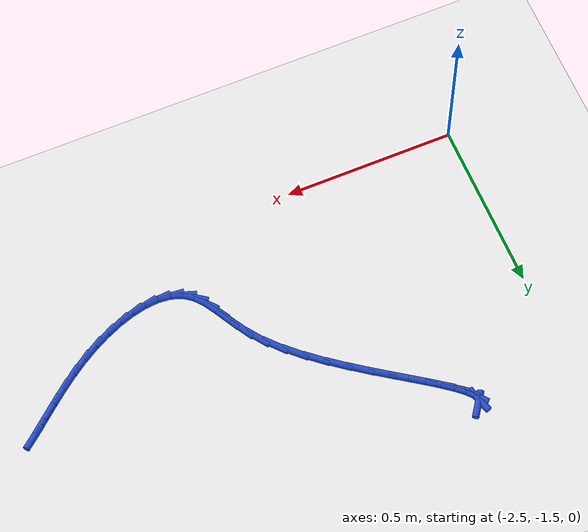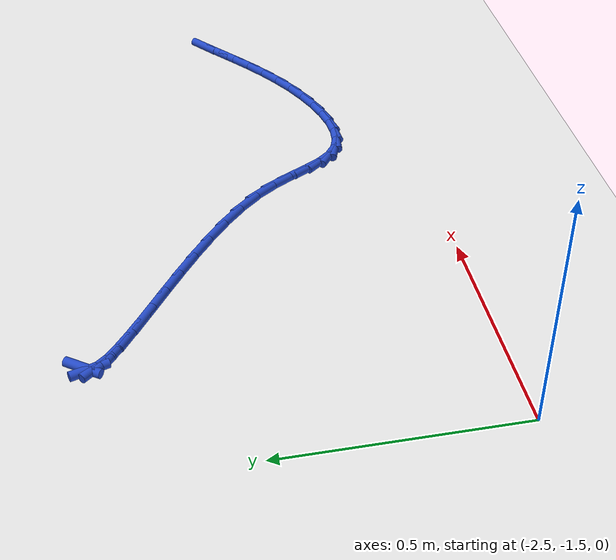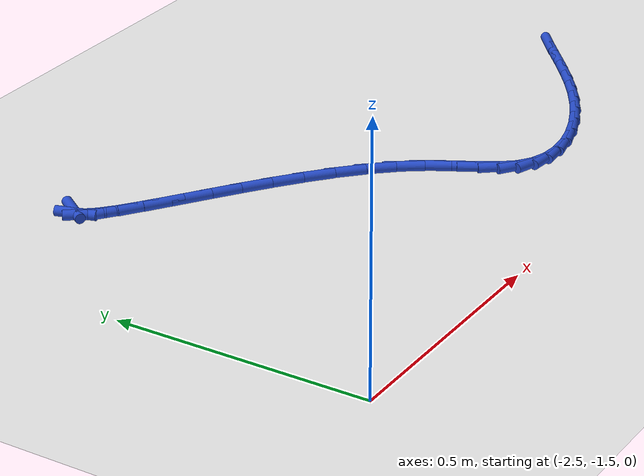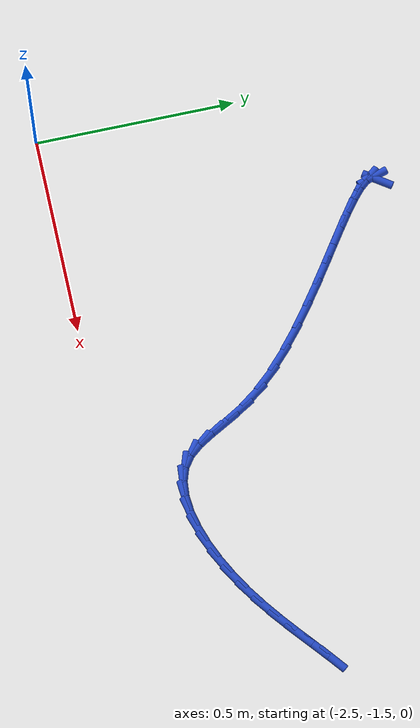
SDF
<sdf version="1.6">
 <world name="default">
  <model name="ground_plane">
   <static>1</static>
   <link name="link">
    <collision name="collision">
     <geometry><plane><normal>0 0 1</normal><size>100 100</size></plane></geometry>
     <surface><friction><ode><mu>100</mu><mu2>50</mu2></ode></friction></surface>
    </collision>
    <visual name="visual">
     <cast_shadows>0</cast_shadows>
     <geometry><plane><normal>0 0 1</normal><size>100 100</size></plane></geometry>
     <material>
      <script><uri>file://media/materials/scripts/gazebo.material</uri><name>Gazebo/WhiteGlow</name></script>
     </material>
    </visual>
   </link>
  </model>
  <model name="line">
   <link name="link_116">
    <pose>-2.22125294652081 -0.6990815131494412 0.01 0 1.57 0.9571895942370352</pose>
    <collision name="collision">
     <geometry><cylinder><radius>0.01</radius><length>0.08</length></cylinder></geometry>
    </collision>
    <visual name="visual">
     <material>
      <script><name>Gazebo/Blue</name><uri>file://media/materials/scripts/gazebo.material</uri></script>
     </material>
     <geometry><cylinder><radius>0.01</radius><length>0.08</length></cylinder></geometry>
    </visual>
   </link>
   <link name="link_117">
    <pose>-2.2292272170919185 -0.7104037606477653 0.01 0 1.57 -1.2773089776449813</pose>
    <collision name="collision">
     <geometry><cylinder><radius>0.01</radius><length>0.08</length></cylinder></geometry>
    </collision>
    <visual name="visual">
     <material>
      <script><name>Gazebo/Blue</name><uri>file://media/materials/scripts/gazebo.material</uri></script>
     </material>
     <geometry><cylinder><radius>0.01</radius><length>0.08</length></cylinder></geometry>
    </visual>
   </link>
   <link name="link_118">
    <pose>-2.224597545553726 -0.7257229102491581 0.01 0 1.57 -0.8812159878755749</pose>
    <collision name="collision">
     <geometry><cylinder><radius>0.01</radius><length>0.08</length></cylinder></geometry>
    </collision>
    <visual name="visual">
     <material>
      <script><name>Gazebo/Blue</name><uri>file://media/materials/scripts/gazebo.material</uri></script>
     </material>
     <geometry><cylinder><radius>0.01</radius><length>0.08</length></cylinder></geometry>
    </visual>
   </link>
   <link name="link_119">
    <pose>-2.2089000163566026 -0.7447587366378638 0.01 0 1.57 -0.7276650507474955</pose>
    <collision name="collision">
     <geometry><cylinder><radius>0.01</radius><length>0.08</length></cylinder></geometry>
    </collision>
    <visual name="visual">
     <material>
      <script><name>Gazebo/Blue</name><uri>file://media/materials/scripts/gazebo.material</uri></script>
     </material>
     <geometry><cylinder><radius>0.01</radius><length>0.08</length></cylinder></geometry>
    </visual>
   </link>
   <link name="link_120">
    <pose>-2.183670713950921 -0.7672310144981273 0.01 0 1.57 -0.6570333576329697</pose>
    <collision name="collision">
     <geometry><cylinder><radius>0.01</radius><length>0.08</length></cylinder></geometry>
    </collision>
    <visual name="visual">
     <material>
      <script><name>Gazebo/Blue</name><uri>file://media/materials/scripts/gazebo.material</uri></script>
     </material>
     <geometry><cylinder><radius>0.01</radius><length>0.08</length></cylinder></geometry>
    </visual>
   </link>
   <link name="link_121">
    <pose>-2.1504457227870497 -0.7928595185141918 0.01 0 1.57 -0.6228869242724772</pose>
    <collision name="collision">
     <geometry><cylinder><radius>0.01</radius><length>0.08</length></cylinder></geometry>
    </collision>
    <visual name="visual">
     <material>
      <script><name>Gazebo/Blue</name><uri>file://media/materials/scripts/gazebo.material</uri></script>
     </material>
     <geometry><cylinder><radius>0.01</radius><length>0.08</length></cylinder></geometry>
    </visual>
   </link>
   <link name="link_122">
    <pose>-2.1107611273153606 -0.821364023370302 0.01 0 1.57 -0.6088367900821916</pose>
    <collision name="collision">
     <geometry><cylinder><radius>0.01</radius><length>0.08</length></cylinder></geometry>
    </collision>
    <visual name="visual">
     <material>
      <script><name>Gazebo/Blue</name><uri>file://media/materials/scripts/gazebo.material</uri></script>
     </material>
     <geometry><cylinder><radius>0.01</radius><length>0.08</length></cylinder></geometry>
    </visual>
   </link>
   <link name="link_123">
    <pose>-2.066153011986227 -0.8524643037507025 0.01 0 1.57 -0.6081897116938988</pose>
    <collision name="collision">
     <geometry><cylinder><radius>0.01</radius><length>0.08</length></cylinder></geometry>
    </collision>
    <visual name="visual">
     <material>
      <script><name>Gazebo/Blue</name><uri>file://media/materials/scripts/gazebo.material</uri></script>
     </material>
     <geometry><cylinder><radius>0.01</radius><length>0.08</length></cylinder></geometry>
    </visual>
   </link>
   <link name="link_124">
    <pose>-2.018157461250017 -0.8858801343396372 0.01 0 1.57 -0.6182037787617646</pose>
    <collision name="collision">
     <geometry><cylinder><radius>0.01</radius><length>0.08</length></cylinder></geometry>
    </collision>
    <visual name="visual">
     <material>
      <script><name>Gazebo/Blue</name><uri>file://media/materials/scripts/gazebo.material</uri></script>
     </material>
     <geometry><cylinder><radius>0.01</radius><length>0.08</length></cylinder></geometry>
    </visual>
   </link>
   <link name="link_125">
    <pose>-1.9683105595571027 -0.9213312898213503 0.01 0 1.57 -0.6381804493771107</pose>
    <collision name="collision">
     <geometry><cylinder><radius>0.01</radius><length>0.08</length></cylinder></geometry>
    </collision>
    <visual name="visual">
     <material>
      <script><name>Gazebo/Blue</name><uri>file://media/materials/scripts/gazebo.material</uri></script>
     </material>
     <geometry><cylinder><radius>0.01</radius><length>0.08</length></cylinder></geometry>
    </visual>
   </link>
   <link name="link_126">
    <pose>-1.9181483913578556 -0.9585375448800862 0.01 0 1.57 -0.6688332250420774</pose>
    <collision name="collision">
     <geometry><cylinder><radius>0.01</radius><length>0.08</length></cylinder></geometry>
    </collision>
    <visual name="visual">
     <material>
      <script><name>Gazebo/Blue</name><uri>file://media/materials/scripts/gazebo.material</uri></script>
     </material>
     <geometry><cylinder><radius>0.01</radius><length>0.08</length></cylinder></geometry>
    </visual>
   </link>
   <link name="link_127">
    <pose>-1.869207041102646 -0.9972186742000893 0.01 0 1.57 -0.712223760450796</pose>
    <collision name="collision">
     <geometry><cylinder><radius>0.01</radius><length>0.08</length></cylinder></geometry>
    </collision>
    <visual name="visual">
     <material>
      <script><name>Gazebo/Blue</name><uri>file://media/materials/scripts/gazebo.material</uri></script>
     </material>
     <geometry><cylinder><radius>0.01</radius><length>0.08</length></cylinder></geometry>
    </visual>
   </link>
   <link name="link_128">
    <pose>-1.8230225932418456 -1.0370944524656036 0.01 0 1.57 -0.772079684224037</pose>
    <collision name="collision">
     <geometry><cylinder><radius>0.01</radius><length>0.08</length></cylinder></geometry>
    </collision>
    <visual name="visual">
     <material>
      <script><name>Gazebo/Blue</name><uri>file://media/materials/scripts/gazebo.material</uri></script>
     </material>
     <geometry><cylinder><radius>0.01</radius><length>0.08</length></cylinder></geometry>
    </visual>
   </link>
   <link name="link_129">
    <pose>-1.7811311322258248 -1.0778846543608736 0.01 0 1.57 -0.8544870536117429</pose>
    <collision name="collision">
     <geometry><cylinder><radius>0.01</radius><length>0.08</length></cylinder></geometry>
    </collision>
    <visual name="visual">
     <material>
      <script><name>Gazebo/Blue</name><uri>file://media/materials/scripts/gazebo.material</uri></script>
     </material>
     <geometry><cylinder><radius>0.01</radius><length>0.08</length></cylinder></geometry>
    </visual>
   </link>
   <link name="link_130">
    <pose>-1.7450687425049547 -1.1193090545701432 0.01 0 1.57 -0.9622592355951012</pose>
    <collision name="collision">
     <geometry><cylinder><radius>0.01</radius><length>0.08</length></cylinder></geometry>
    </collision>
    <visual name="visual">
     <material>
      <script><name>Gazebo/Blue</name><uri>file://media/materials/scripts/gazebo.material</uri></script>
     </material>
     <geometry><cylinder><radius>0.01</radius><length>0.08</length></cylinder></geometry>
    </visual>
   </link>
   <link name="link_131">
    <pose>-1.716039698263559 -1.1609729403534192 0.01 0 1.57 -1.0483858045266614</pose>
    <collision name="collision">
     <geometry><cylinder><radius>0.01</radius><length>0.08</length></cylinder></geometry>
    </collision>
    <visual name="visual">
     <material>
      <script><name>Gazebo/Blue</name><uri>file://media/materials/scripts/gazebo.material</uri></script>
     </material>
     <geometry><cylinder><radius>0.01</radius><length>0.08</length></cylinder></geometry>
    </visual>
   </link>
   <link name="link_132">
    <pose>-1.6926554726854195 -1.201586981960667 0.01 0 1.57 -1.0775841131379829</pose>
    <collision name="collision">
     <geometry><cylinder><radius>0.01</radius><length>0.08</length></cylinder></geometry>
    </collision>
    <visual name="visual">
     <material>
      <script><name>Gazebo/Blue</name><uri>file://media/materials/scripts/gazebo.material</uri></script>
     </material>
     <geometry><cylinder><radius>0.01</radius><length>0.08</length></cylinder></geometry>
    </visual>
   </link>
   <link name="link_133">
    <pose>-1.6723080819881602 -1.2394410896434132 0.01 0 1.57 -1.0326563771871755</pose>
    <collision name="collision">
     <geometry><cylinder><radius>0.01</radius><length>0.08</length></cylinder></geometry>
    </collision>
    <visual name="visual">
     <material>
      <script><name>Gazebo/Blue</name><uri>file://media/materials/scripts/gazebo.material</uri></script>
     </material>
     <geometry><cylinder><radius>0.01</radius><length>0.08</length></cylinder></geometry>
    </visual>
   </link>
   <link name="link_134">
    <pose>-1.6523824484068685 -1.2728227259537874 0.01 0 1.57 -0.8879994703923105</pose>
    <collision name="collision">
     <geometry><cylinder><radius>0.01</radius><length>0.08</length></cylinder></geometry>
    </collision>
    <visual name="visual">
     <material>
      <script><name>Gazebo/Blue</name><uri>file://media/materials/scripts/gazebo.material</uri></script>
     </material>
     <geometry><cylinder><radius>0.01</radius><length>0.08</length></cylinder></geometry>
    </visual>
   </link>
   <link name="link_135">
    <pose>-1.6302634941766305 -1.3000193534439186 0.01 0 1.57 -0.6249259331362931</pose>
    <collision name="collision">
     <geometry><cylinder><radius>0.01</radius><length>0.08</length></cylinder></geometry>
    </collision>
    <visual name="visual">
     <material>
      <script><name>Gazebo/Blue</name><uri>file://media/materials/scripts/gazebo.material</uri></script>
     </material>
     <geometry><cylinder><radius>0.01</radius><length>0.08</length></cylinder></geometry>
    </visual>
   </link>
   <link name="link_136">
    <pose>-1.603425700100993 -1.3193793819458266 0.01 0 1.57 -0.3305463286209471</pose>
    <collision name="collision">
     <geometry><cylinder><radius>0.01</radius><length>0.08</length></cylinder></geometry>
    </collision>
    <visual name="visual">
     <material>
      <script><name>Gazebo/Blue</name><uri>file://media/materials/scripts/gazebo.material</uri></script>
     </material>
     <geometry><cylinder><radius>0.01</radius><length>0.08</length></cylinder></geometry>
    </visual>
   </link>
   <link name="link_137">
    <pose>-1.5711243577767593 -1.3304631162080576 0.01 0 1.57 -0.0941758045474687</pose>
    <collision name="collision">
     <geometry><cylinder><radius>0.01</radius><length>0.08</length></cylinder></geometry>
    </collision>
    <visual name="visual">
     <material>
      <script><name>Gazebo/Blue</name><uri>file://media/materials/scripts/gazebo.material</uri></script>
     </material>
     <geometry><cylinder><radius>0.01</radius><length>0.08</length></cylinder></geometry>
    </visual>
   </link>
   <link name="link_138">
    <pose>-1.534253096967046 -1.3339457990190813 0.01 0 1.57 0.08382146839003989</pose>
    <collision name="collision">
     <geometry><cylinder><radius>0.01</radius><length>0.08</length></cylinder></geometry>
    </collision>
    <visual name="visual">
     <material>
      <script><name>Gazebo/Blue</name><uri>file://media/materials/scripts/gazebo.material</uri></script>
     </material>
     <geometry><cylinder><radius>0.01</radius><length>0.08</length></cylinder></geometry>
    </visual>
   </link>
   <link name="link_139">
    <pose>-1.4937665493536676 -1.3305441867944452 0.01 0 1.57 0.21824670433505333</pose>
    <collision name="collision">
     <geometry><cylinder><radius>0.01</radius><length>0.08</length></cylinder></geometry>
    </collision>
    <visual name="visual">
     <material>
      <script><name>Gazebo/Blue</name><uri>file://media/materials/scripts/gazebo.material</uri></script>
     </material>
     <geometry><cylinder><radius>0.01</radius><length>0.08</length></cylinder></geometry>
    </visual>
   </link>
   <link name="link_140">
    <pose>-1.4506193466184374 -1.320975035949696 0.01 0 1.57 0.3231315771120547</pose>
    <collision name="collision">
     <geometry><cylinder><radius>0.01</radius><length>0.08</length></cylinder></geometry>
    </collision>
    <visual name="visual">
     <material>
      <script><name>Gazebo/Blue</name><uri>file://media/materials/scripts/gazebo.material</uri></script>
     </material>
     <geometry><cylinder><radius>0.01</radius><length>0.08</length></cylinder></geometry>
    </visual>
   </link>
   <link name="link_141">
    <pose>-1.4057661204431704 -1.305955102900382 0.01 0 1.57 0.408759350863599</pose>
    <collision name="collision">
     <geometry><cylinder><radius>0.01</radius><length>0.08</length></cylinder></geometry>
    </collision>
    <visual name="visual">
     <material>
      <script><name>Gazebo/Blue</name><uri>file://media/materials/scripts/gazebo.material</uri></script>
     </material>
     <geometry><cylinder><radius>0.01</radius><length>0.08</length></cylinder></geometry>
    </visual>
   </link>
   <link name="link_142">
    <pose>-1.3601615025096778 -1.2862011440620493 0.01 0 1.57 0.48233273414424854</pose>
    <collision name="collision">
     <geometry><cylinder><radius>0.01</radius><length>0.08</length></cylinder></geometry>
    </collision>
    <visual name="visual">
     <material>
      <script><name>Gazebo/Blue</name><uri>file://media/materials/scripts/gazebo.material</uri></script>
     </material>
     <geometry><cylinder><radius>0.01</radius><length>0.08</length></cylinder></geometry>
    </visual>
   </link>
   <link name="link_143">
    <pose>-1.314760124499775 -1.262429915850246 0.01 0 1.57 0.5490388766897932</pose>
    <collision name="collision">
     <geometry><cylinder><radius>0.01</radius><length>0.08</length></cylinder></geometry>
    </collision>
    <visual name="visual">
     <material>
      <script><name>Gazebo/Blue</name><uri>file://media/materials/scripts/gazebo.material</uri></script>
     </material>
     <geometry><cylinder><radius>0.01</radius><length>0.08</length></cylinder></geometry>
    </visual>
   </link>
   <link name="link_144">
    <pose>-1.270511125932363 -1.2353591049167354 0.01 0 1.57 0.6076971293029396</pose>
    <collision name="collision">
     <geometry><cylinder><radius>0.01</radius><length>0.08</length></cylinder></geometry>
    </collision>
    <visual name="visual">
     <material>
      <script><name>Gazebo/Blue</name><uri>file://media/materials/scripts/gazebo.material</uri></script>
     </material>
     <geometry><cylinder><radius>0.01</radius><length>0.08</length></cylinder></geometry>
    </visual>
   </link>
   <link name="link_145">
    <pose>-1.2279713575373117 -1.205772841907135 0.01 0 1.57 0.6515430251404545</pose>
    <collision name="collision">
     <geometry><cylinder><radius>0.01</radius><length>0.08</length></cylinder></geometry>
    </collision>
    <visual name="visual">
     <material>
      <script><name>Gazebo/Blue</name><uri>file://media/materials/scripts/gazebo.material</uri></script>
     </material>
     <geometry><cylinder><radius>0.01</radius><length>0.08</length></cylinder></geometry>
    </visual>
   </link>
   <link name="link_146">
    <pose>-1.187050495087699 -1.1745648728576985 0.01 0 1.57 0.6803329687138894</pose>
    <collision name="collision">
     <geometry><cylinder><radius>0.01</radius><length>0.08</length></cylinder></geometry>
    </collision>
    <visual name="visual">
     <material>
      <script><name>Gazebo/Blue</name><uri>file://media/materials/scripts/gazebo.material</uri></script>
     </material>
     <geometry><cylinder><radius>0.01</radius><length>0.08</length></cylinder></geometry>
    </visual>
   </link>
   <link name="link_147">
    <pose>-1.1475977050383324 -1.142639192582834 0.01 0 1.57 0.6941153873834341</pose>
    <collision name="collision">
     <geometry><cylinder><radius>0.01</radius><length>0.08</length></cylinder></geometry>
    </collision>
    <visual name="visual">
     <material>
      <script><name>Gazebo/Blue</name><uri>file://media/materials/scripts/gazebo.material</uri></script>
     </material>
     <geometry><cylinder><radius>0.01</radius><length>0.08</length></cylinder></geometry>
    </visual>
   </link>
   <link name="link_148">
    <pose>-1.1094621538440206 -1.1108997958969502 0.01 0 1.57 0.6922026378837518</pose>
    <collision name="collision">
     <geometry><cylinder><radius>0.01</radius><length>0.08</length></cylinder></geometry>
    </collision>
    <visual name="visual">
     <material>
      <script><name>Gazebo/Blue</name><uri>file://media/materials/scripts/gazebo.material</uri></script>
     </material>
     <geometry><cylinder><radius>0.01</radius><length>0.08</length></cylinder></geometry>
    </visual>
   </link>
   <link name="link_149">
    <pose>-1.0724930079595714 -1.080250677614454 0.01 0 1.57 0.6729063840076195</pose>
    <collision name="collision">
     <geometry><cylinder><radius>0.01</radius><length>0.08</length></cylinder></geometry>
    </collision>
    <visual name="visual">
     <material>
      <script><name>Gazebo/Blue</name><uri>file://media/materials/scripts/gazebo.material</uri></script>
     </material>
     <geometry><cylinder><radius>0.01</radius><length>0.08</length></cylinder></geometry>
    </visual>
   </link>
  </model>
 </world>
</sdf>
